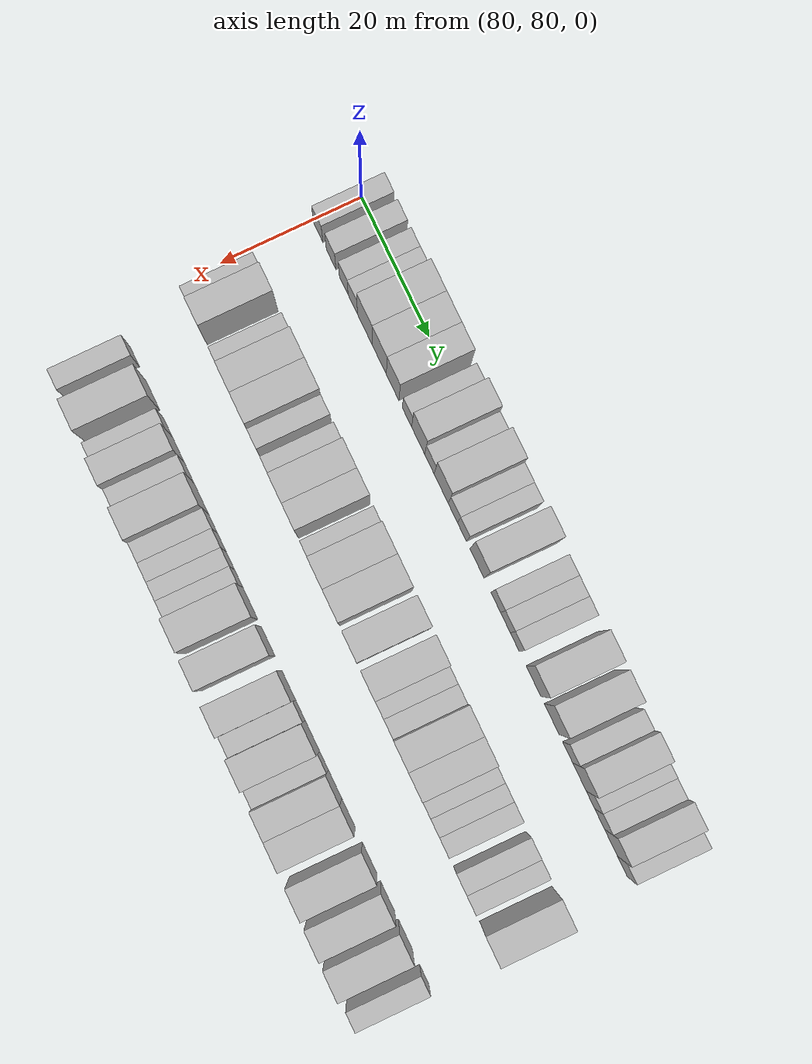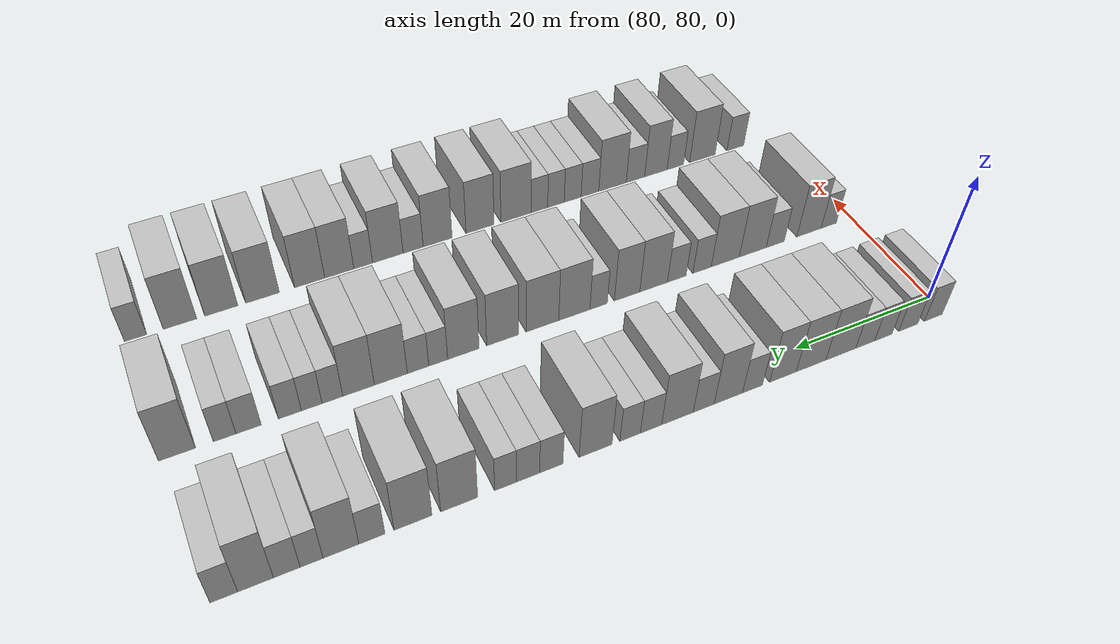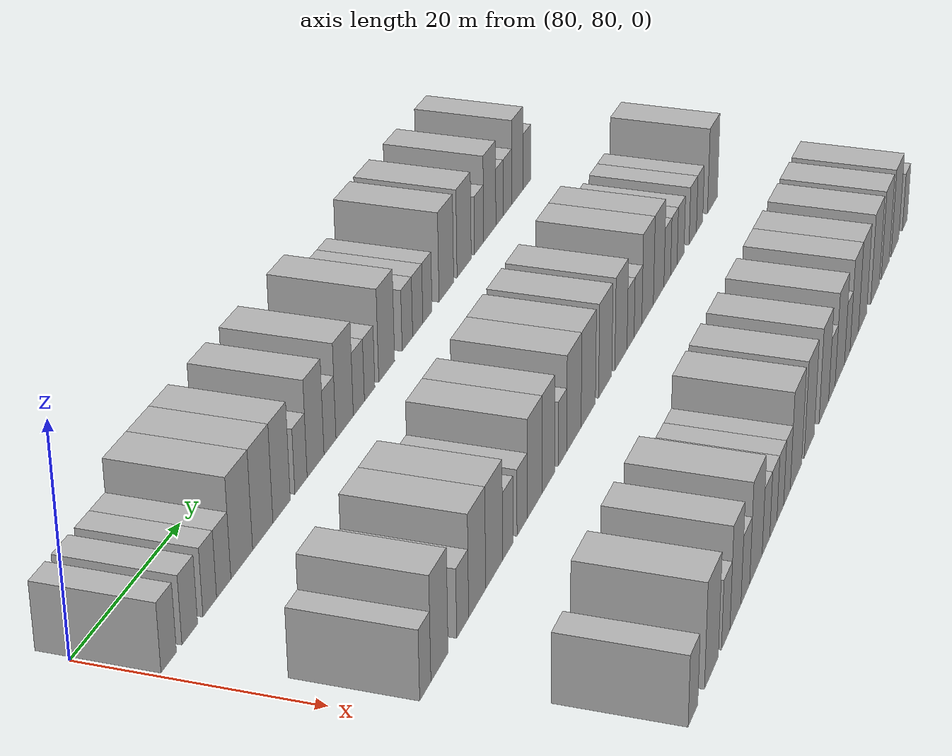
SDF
<sdf version="1.6">
 <world name="default">
  <model name="building_630">
   <static>1</static>
   <pose>82.0000 81.7824 0 0.000000 0.000000 0.000000</pose>
   <link name="link">
    <pose>0 0 3.00 0 0 0</pose>
    <collision name="collision"><geometry><box><size>10.0000 2.7802 6.0000</size></box></geometry></collision>
    <visual name="visual">
     <cast_shadows>0</cast_shadows>
     <geometry><box><size>10.0000 2.7802 6.0000</size></box></geometry>
     <material>
      <script>
       <uri>model://HANNAS_wall/materials/scripts</uri>
       <uri>model://HANNAS_wall/materials/textures</uri>
       <name>vrc/HANNAS_wall</name>
      </script>
     </material>
    </visual>
   </link>
  </model>
  <model name="building_631">
   <static>1</static>
   <pose>82.0000 85.6261 0 0.000000 0.000000 0.000000</pose>
   <link name="link">
    <pose>0 0 3.00 0 0 0</pose>
    <collision name="collision"><geometry><box><size>10.0000 2.9071 6.0000</size></box></geometry></collision>
    <visual name="visual">
     <cast_shadows>0</cast_shadows>
     <geometry><box><size>10.0000 2.9071 6.0000</size></box></geometry>
     <material>
      <script>
       <uri>model://HANNAS_wall/materials/scripts</uri>
       <uri>model://HANNAS_wall/materials/textures</uri>
       <name>vrc/HANNAS_wall</name>
      </script>
     </material>
    </visual>
   </link>
  </model>
  <model name="building_632">
   <static>1</static>
   <pose>82.0000 89.3894 0 0.000000 0.000000 0.000000</pose>
   <link name="link">
    <pose>0 0 3.00 0 0 0</pose>
    <collision name="collision"><geometry><box><size>10.0000 2.6193 6.0000</size></box></geometry></collision>
    <visual name="visual">
     <cast_shadows>0</cast_shadows>
     <geometry><box><size>10.0000 2.6193 6.0000</size></box></geometry>
     <material>
      <script>
       <uri>model://HANNAS_wall/materials/scripts</uri>
       <uri>model://HANNAS_wall/materials/textures</uri>
       <name>vrc/HANNAS_wall</name>
      </script>
     </material>
    </visual>
   </link>
  </model>
  <model name="building_633">
   <static>1</static>
   <pose>82.0000 92.0982 0 0.000000 0.000000 0.000000</pose>
   <link name="link">
    <pose>0 0 3.00 0 0 0</pose>
    <collision name="collision"><geometry><box><size>10.0000 2.7984 6.0000</size></box></geometry></collision>
    <visual name="visual">
     <cast_shadows>0</cast_shadows>
     <geometry><box><size>10.0000 2.7984 6.0000</size></box></geometry>
     <material>
      <script>
       <uri>model://HANNAS_wall/materials/scripts</uri>
       <uri>model://HANNAS_wall/materials/textures</uri>
       <name>vrc/HANNAS_wall</name>
      </script>
     </material>
    </visual>
   </link>
  </model>
  <model name="building_634">
   <static>1</static>
   <pose>82.0000 95.6857 0 0.000000 0.000000 0.000000</pose>
   <link name="link">
    <pose>0 0 4.50 0 0 0</pose>
    <collision name="collision"><geometry><box><size>10.0000 4.3767 9.0000</size></box></geometry></collision>
    <visual name="visual">
     <cast_shadows>0</cast_shadows>
     <geometry><box><size>10.0000 4.3767 9.0000</size></box></geometry>
     <material>
      <script>
       <uri>model://HANNAS_wall/materials/scripts</uri>
       <uri>model://HANNAS_wall/materials/textures</uri>
       <name>vrc/HANNAS_wall</name>
      </script>
     </material>
    </visual>
   </link>
  </model>
  <model name="building_635">
   <static>1</static>
   <pose>82.0000 99.9905 0 0.000000 0.000000 0.000000</pose>
   <link name="link">
    <pose>0 0 4.50 0 0 0</pose>
    <collision name="collision"><geometry><box><size>10.0000 4.2329 9.0000</size></box></geometry></collision>
    <visual name="visual">
     <cast_shadows>0</cast_shadows>
     <geometry><box><size>10.0000 4.2329 9.0000</size></box></geometry>
     <material>
      <script>
       <uri>model://HANNAS_wall/materials/scripts</uri>
       <uri>model://HANNAS_wall/materials/textures</uri>
       <name>vrc/HANNAS_wall</name>
      </script>
     </material>
    </visual>
   </link>
  </model>
  <model name="building_636">
   <static>1</static>
   <pose>82.0000 103.9727 0 0.000000 0.000000 0.000000</pose>
   <link name="link">
    <pose>0 0 4.50 0 0 0</pose>
    <collision name="collision"><geometry><box><size>10.0000 3.7315 9.0000</size></box></geometry></collision>
    <visual name="visual">
     <cast_shadows>0</cast_shadows>
     <geometry><box><size>10.0000 3.7315 9.0000</size></box></geometry>
     <material>
      <script>
       <uri>model://HANNAS_wall/materials/scripts</uri>
       <uri>model://HANNAS_wall/materials/textures</uri>
       <name>vrc/HANNAS_wall</name>
      </script>
     </material>
    </visual>
   </link>
  </model>
  <model name="building_637">
   <static>1</static>
   <pose>82.0000 108.2093 0 0.000000 0.000000 0.000000</pose>
   <link name="link">
    <pose>0 0 3.00 0 0 0</pose>
    <collision name="collision"><geometry><box><size>10.0000 2.7417 6.0000</size></box></geometry></collision>
    <visual name="visual">
     <cast_shadows>0</cast_shadows>
     <geometry><box><size>10.0000 2.7417 6.0000</size></box></geometry>
     <material>
      <script>
       <uri>model://HANNAS_wall/materials/scripts</uri>
       <uri>model://HANNAS_wall/materials/textures</uri>
       <name>vrc/HANNAS_wall</name>
      </script>
     </material>
    </visual>
   </link>
  </model>
  <model name="building_638">
   <static>1</static>
   <pose>82.0000 111.5057 0 0.000000 0.000000 0.000000</pose>
   <link name="link">
    <pose>0 0 4.50 0 0 0</pose>
    <collision name="collision"><geometry><box><size>10.0000 3.8511 9.0000</size></box></geometry></collision>
    <visual name="visual">
     <cast_shadows>0</cast_shadows>
     <geometry><box><size>10.0000 3.8511 9.0000</size></box></geometry>
     <material>
      <script>
       <uri>model://HANNAS_wall/materials/scripts</uri>
       <uri>model://HANNAS_wall/materials/textures</uri>
       <name>vrc/HANNAS_wall</name>
      </script>
     </material>
    </visual>
   </link>
  </model>
  <model name="building_639">
   <static>1</static>
   <pose>82.0000 114.8330 0 0.000000 0.000000 0.000000</pose>
   <link name="link">
    <pose>0 0 3.00 0 0 0</pose>
    <collision name="collision"><geometry><box><size>10.0000 2.8034 6.0000</size></box></geometry></collision>
    <visual name="visual">
     <cast_shadows>0</cast_shadows>
     <geometry><box><size>10.0000 2.8034 6.0000</size></box></geometry>
     <material>
      <script>
       <uri>model://HANNAS_wall/materials/scripts</uri>
       <uri>model://HANNAS_wall/materials/textures</uri>
       <name>vrc/HANNAS_wall</name>
      </script>
     </material>
    </visual>
   </link>
  </model>
  <model name="building_640">
   <static>1</static>
   <pose>82.0000 118.3128 0 0.000000 0.000000 0.000000</pose>
   <link name="link">
    <pose>0 0 4.50 0 0 0</pose>
    <collision name="collision"><geometry><box><size>10.0000 4.1563 9.0000</size></box></geometry></collision>
    <visual name="visual">
     <cast_shadows>0</cast_shadows>
     <geometry><box><size>10.0000 4.1563 9.0000</size></box></geometry>
     <material>
      <script>
       <uri>model://HANNAS_wall/materials/scripts</uri>
       <uri>model://HANNAS_wall/materials/textures</uri>
       <name>vrc/HANNAS_wall</name>
      </script>
     </material>
    </visual>
   </link>
  </model>
  <model name="building_641">
   <static>1</static>
   <pose>82.0000 121.7629 0 0.000000 0.000000 0.000000</pose>
   <link name="link">
    <pose>0 0 3.00 0 0 0</pose>
    <collision name="collision"><geometry><box><size>10.0000 2.7438 6.0000</size></box></geometry></collision>
    <visual name="visual">
     <cast_shadows>0</cast_shadows>
     <geometry><box><size>10.0000 2.7438 6.0000</size></box></geometry>
     <material>
      <script>
       <uri>model://HANNAS_wall/materials/scripts</uri>
       <uri>model://HANNAS_wall/materials/textures</uri>
       <name>vrc/HANNAS_wall</name>
      </script>
     </material>
    </visual>
   </link>
  </model>
  <model name="building_642">
   <static>1</static>
   <pose>82.0000 124.4463 0 0.000000 0.000000 0.000000</pose>
   <link name="link">
    <pose>0 0 3.00 0 0 0</pose>
    <collision name="collision"><geometry><box><size>10.0000 2.6231 6.0000</size></box></geometry></collision>
    <visual name="visual">
     <cast_shadows>0</cast_shadows>
     <geometry><box><size>10.0000 2.6231 6.0000</size></box></geometry>
     <material>
      <script>
       <uri>model://HANNAS_wall/materials/scripts</uri>
       <uri>model://HANNAS_wall/materials/textures</uri>
       <name>vrc/HANNAS_wall</name>
      </script>
     </material>
    </visual>
   </link>
  </model>
  <model name="building_643">
   <static>1</static>
   <pose>82.0000 128.8156 0 0.000000 0.000000 0.000000</pose>
   <link name="link">
    <pose>0 0 4.50 0 0 0</pose>
    <collision name="collision"><geometry><box><size>10.0000 4.1155 9.0000</size></box></geometry></collision>
    <visual name="visual">
     <cast_shadows>0</cast_shadows>
     <geometry><box><size>10.0000 4.1155 9.0000</size></box></geometry>
     <material>
      <script>
       <uri>model://HANNAS_wall/materials/scripts</uri>
       <uri>model://HANNAS_wall/materials/textures</uri>
       <name>vrc/HANNAS_wall</name>
      </script>
     </material>
    </visual>
   </link>
  </model>
  <model name="building_644">
   <static>1</static>
   <pose>82.0000 134.2905 0 0.000000 0.000000 0.000000</pose>
   <link name="link">
    <pose>0 0 3.00 0 0 0</pose>
    <collision name="collision"><geometry><box><size>10.0000 2.8343 6.0000</size></box></geometry></collision>
    <visual name="visual">
     <cast_shadows>0</cast_shadows>
     <geometry><box><size>10.0000 2.8343 6.0000</size></box></geometry>
     <material>
      <script>
       <uri>model://HANNAS_wall/materials/scripts</uri>
       <uri>model://HANNAS_wall/materials/textures</uri>
       <name>vrc/HANNAS_wall</name>
      </script>
     </material>
    </visual>
   </link>
  </model>
  <model name="building_645">
   <static>1</static>
   <pose>82.0000 137.1120 0 0.000000 0.000000 0.000000</pose>
   <link name="link">
    <pose>0 0 3.00 0 0 0</pose>
    <collision name="collision"><geometry><box><size>10.0000 2.8088 6.0000</size></box></geometry></collision>
    <visual name="visual">
     <cast_shadows>0</cast_shadows>
     <geometry><box><size>10.0000 2.8088 6.0000</size></box></geometry>
     <material>
      <script>
       <uri>model://HANNAS_wall/materials/scripts</uri>
       <uri>model://HANNAS_wall/materials/textures</uri>
       <name>vrc/HANNAS_wall</name>
      </script>
     </material>
    </visual>
   </link>
  </model>
  <model name="building_646">
   <static>1</static>
   <pose>82.0000 139.7992 0 0.000000 0.000000 0.000000</pose>
   <link name="link">
    <pose>0 0 3.00 0 0 0</pose>
    <collision name="collision"><geometry><box><size>10.0000 2.5657 6.0000</size></box></geometry></collision>
    <visual name="visual">
     <cast_shadows>0</cast_shadows>
     <geometry><box><size>10.0000 2.5657 6.0000</size></box></geometry>
     <material>
      <script>
       <uri>model://HANNAS_wall/materials/scripts</uri>
       <uri>model://HANNAS_wall/materials/textures</uri>
       <name>vrc/HANNAS_wall</name>
      </script>
     </material>
    </visual>
   </link>
  </model>
  <model name="building_647">
   <static>1</static>
   <pose>82.0000 145.2145 0 0.000000 0.000000 0.000000</pose>
   <link name="link">
    <pose>0 0 4.50 0 0 0</pose>
    <collision name="collision"><geometry><box><size>10.0000 4.2648 9.0000</size></box></geometry></collision>
    <visual name="visual">
     <cast_shadows>0</cast_shadows>
     <geometry><box><size>10.0000 4.2648 9.0000</size></box></geometry>
     <material>
      <script>
       <uri>model://HANNAS_wall/materials/scripts</uri>
       <uri>model://HANNAS_wall/materials/textures</uri>
       <name>vrc/HANNAS_wall</name>
      </script>
     </material>
    </visual>
   </link>
  </model>
  <model name="building_648">
   <static>1</static>
   <pose>82.0000 150.4827 0 0.000000 0.000000 0.000000</pose>
   <link name="link">
    <pose>0 0 4.50 0 0 0</pose>
    <collision name="collision"><geometry><box><size>10.0000 4.2716 9.0000</size></box></geometry></collision>
    <visual name="visual">
     <cast_shadows>0</cast_shadows>
     <geometry><box><size>10.0000 4.2716 9.0000</size></box></geometry>
     <material>
      <script>
       <uri>model://HANNAS_wall/materials/scripts</uri>
       <uri>model://HANNAS_wall/materials/textures</uri>
       <name>vrc/HANNAS_wall</name>
      </script>
     </material>
    </visual>
   </link>
  </model>
  <model name="building_649">
   <static>1</static>
   <pose>82.0000 155.0553 0 0.000000 0.000000 0.000000</pose>
   <link name="link">
    <pose>0 0 3.00 0 0 0</pose>
    <collision name="collision"><geometry><box><size>10.0000 2.8738 6.0000</size></box></geometry></collision>
    <visual name="visual">
     <cast_shadows>0</cast_shadows>
     <geometry><box><size>10.0000 2.8738 6.0000</size></box></geometry>
     <material>
      <script>
       <uri>model://HANNAS_wall/materials/scripts</uri>
       <uri>model://HANNAS_wall/materials/textures</uri>
       <name>vrc/HANNAS_wall</name>
      </script>
     </material>
    </visual>
   </link>
  </model>
  <model name="building_650">
   <static>1</static>
   <pose>82.0000 158.4322 0 0.000000 0.000000 0.000000</pose>
   <link name="link">
    <pose>0 0 4.50 0 0 0</pose>
    <collision name="collision"><geometry><box><size>10.0000 3.8799 9.0000</size></box></geometry></collision>
    <visual name="visual">
     <cast_shadows>0</cast_shadows>
     <geometry><box><size>10.0000 3.8799 9.0000</size></box></geometry>
     <material>
      <script>
       <uri>model://HANNAS_wall/materials/scripts</uri>
       <uri>model://HANNAS_wall/materials/textures</uri>
       <name>vrc/HANNAS_wall</name>
      </script>
     </material>
    </visual>
   </link>
  </model>
  <model name="building_651">
   <static>1</static>
   <pose>82.0000 161.5852 0 0.000000 0.000000 0.000000</pose>
   <link name="link">
    <pose>0 0 3.00 0 0 0</pose>
    <collision name="collision"><geometry><box><size>10.0000 2.4261 6.0000</size></box></geometry></collision>
    <visual name="visual">
     <cast_shadows>0</cast_shadows>
     <geometry><box><size>10.0000 2.4261 6.0000</size></box></geometry>
     <material>
      <script>
       <uri>model://HANNAS_wall/materials/scripts</uri>
       <uri>model://HANNAS_wall/materials/textures</uri>
       <name>vrc/HANNAS_wall</name>
      </script>
     </material>
    </visual>
   </link>
  </model>
  <model name="building_652">
   <static>1</static>
   <pose>82.0000 164.1970 0 0.000000 0.000000 0.000000</pose>
   <link name="link">
    <pose>0 0 3.00 0 0 0</pose>
    <collision name="collision"><geometry><box><size>10.0000 2.7975 6.0000</size></box></geometry></collision>
    <visual name="visual">
     <cast_shadows>0</cast_shadows>
     <geometry><box><size>10.0000 2.7975 6.0000</size></box></geometry>
     <material>
      <script>
       <uri>model://HANNAS_wall/materials/scripts</uri>
       <uri>model://HANNAS_wall/materials/textures</uri>
       <name>vrc/HANNAS_wall</name>
      </script>
     </material>
    </visual>
   </link>
  </model>
  <model name="building_653">
   <static>1</static>
   <pose>82.0000 167.4390 0 0.000000 0.000000 0.000000</pose>
   <link name="link">
    <pose>0 0 4.50 0 0 0</pose>
    <collision name="collision"><geometry><box><size>10.0000 3.6865 9.0000</size></box></geometry></collision>
    <visual name="visual">
     <cast_shadows>0</cast_shadows>
     <geometry><box><size>10.0000 3.6865 9.0000</size></box></geometry>
     <material>
      <script>
       <uri>model://HANNAS_wall/materials/scripts</uri>
       <uri>model://HANNAS_wall/materials/textures</uri>
       <name>vrc/HANNAS_wall</name>
      </script>
     </material>
    </visual>
   </link>
  </model>
  <model name="building_654">
   <static>1</static>
   <pose>82.0000 170.6936 0 0.000000 0.000000 0.000000</pose>
   <link name="link">
    <pose>0 0 3.00 0 0 0</pose>
    <collision name="collision"><geometry><box><size>10.0000 2.8226 6.0000</size></box></geometry></collision>
    <visual name="visual">
     <cast_shadows>0</cast_shadows>
     <geometry><box><size>10.0000 2.8226 6.0000</size></box></geometry>
     <material>
      <script>
       <uri>model://HANNAS_wall/materials/scripts</uri>
       <uri>model://HANNAS_wall/materials/textures</uri>
       <name>vrc/HANNAS_wall</name>
      </script>
     </material>
    </visual>
   </link>
  </model>
  <model name="building_814">
   <static>1</static>
   <pose>101.0000 83.7305 0 0.000000 0.000000 0.000000</pose>
   <link name="link">
    <pose>0 0 3.00 0 0 0</pose>
    <collision name="collision"><geometry><box><size>10.0000 2.4700 6.0000</size></box></geometry></collision>
    <visual name="visual">
     <cast_shadows>0</cast_shadows>
     <geometry><box><size>10.0000 2.4700 6.0000</size></box></geometry>
     <material>
      <script>
       <uri>model://HANNAS_wall/materials/scripts</uri>
       <uri>model://HANNAS_wall/materials/textures</uri>
       <name>vrc/HANNAS_wall</name>
      </script>
     </material>
    </visual>
   </link>
  </model>
  <model name="building_815">
   <static>1</static>
   <pose>101.0000 86.9120 0 0.000000 0.000000 0.000000</pose>
   <link name="link">
    <pose>0 0 4.50 0 0 0</pose>
    <collision name="collision"><geometry><box><size>10.0000 3.8930 9.0000</size></box></geometry></collision>
    <visual name="visual">
     <cast_shadows>0</cast_shadows>
     <geometry><box><size>10.0000 3.8930 9.0000</size></box></geometry>
     <material>
      <script>
       <uri>model://HANNAS_wall/materials/scripts</uri>
       <uri>model://HANNAS_wall/materials/textures</uri>
       <name>vrc/HANNAS_wall</name>
      </script>
     </material>
    </visual>
   </link>
  </model>
  <model name="building_816">
   <static>1</static>
   <pose>101.0000 92.2746 0 0.000000 0.000000 0.000000</pose>
   <link name="link">
    <pose>0 0 3.00 0 0 0</pose>
    <collision name="collision"><geometry><box><size>10.0000 2.8321 6.0000</size></box></geometry></collision>
    <visual name="visual">
     <cast_shadows>0</cast_shadows>
     <geometry><box><size>10.0000 2.8321 6.0000</size></box></geometry>
     <material>
      <script>
       <uri>model://HANNAS_wall/materials/scripts</uri>
       <uri>model://HANNAS_wall/materials/textures</uri>
       <name>vrc/HANNAS_wall</name>
      </script>
     </material>
    </visual>
   </link>
  </model>
  <model name="building_817">
   <static>1</static>
   <pose>101.0000 95.7665 0 0.000000 0.000000 0.000000</pose>
   <link name="link">
    <pose>0 0 4.50 0 0 0</pose>
    <collision name="collision"><geometry><box><size>10.0000 4.1518 9.0000</size></box></geometry></collision>
    <visual name="visual">
     <cast_shadows>0</cast_shadows>
     <geometry><box><size>10.0000 4.1518 9.0000</size></box></geometry>
     <material>
      <script>
       <uri>model://HANNAS_wall/materials/scripts</uri>
       <uri>model://HANNAS_wall/materials/textures</uri>
       <name>vrc/HANNAS_wall</name>
      </script>
     </material>
    </visual>
   </link>
  </model>
  <model name="building_818">
   <static>1</static>
   <pose>101.0000 99.9763 0 0.000000 0.000000 0.000000</pose>
   <link name="link">
    <pose>0 0 4.50 0 0 0</pose>
    <collision name="collision"><geometry><box><size>10.0000 4.2677 9.0000</size></box></geometry></collision>
    <visual name="visual">
     <cast_shadows>0</cast_shadows>
     <geometry><box><size>10.0000 4.2677 9.0000</size></box></geometry>
     <material>
      <script>
       <uri>model://HANNAS_wall/materials/scripts</uri>
       <uri>model://HANNAS_wall/materials/textures</uri>
       <name>vrc/HANNAS_wall</name>
      </script>
     </material>
    </visual>
   </link>
  </model>
  <model name="building_819">
   <static>1</static>
   <pose>101.0000 103.4939 0 0.000000 0.000000 0.000000</pose>
   <link name="link">
    <pose>0 0 3.00 0 0 0</pose>
    <collision name="collision"><geometry><box><size>10.0000 2.7676 6.0000</size></box></geometry></collision>
    <visual name="visual">
     <cast_shadows>0</cast_shadows>
     <geometry><box><size>10.0000 2.7676 6.0000</size></box></geometry>
     <material>
      <script>
       <uri>model://HANNAS_wall/materials/scripts</uri>
       <uri>model://HANNAS_wall/materials/textures</uri>
       <name>vrc/HANNAS_wall</name>
      </script>
     </material>
    </visual>
   </link>
  </model>
  <model name="building_820">
   <static>1</static>
   <pose>101.0000 107.2509 0 0.000000 0.000000 0.000000</pose>
   <link name="link">
    <pose>0 0 3.00 0 0 0</pose>
    <collision name="collision"><geometry><box><size>10.0000 2.7465 6.0000</size></box></geometry></collision>
    <visual name="visual">
     <cast_shadows>0</cast_shadows>
     <geometry><box><size>10.0000 2.7465 6.0000</size></box></geometry>
     <material>
      <script>
       <uri>model://HANNAS_wall/materials/scripts</uri>
       <uri>model://HANNAS_wall/materials/textures</uri>
       <name>vrc/HANNAS_wall</name>
      </script>
     </material>
    </visual>
   </link>
  </model>
  <model name="building_821">
   <static>1</static>
   <pose>101.0000 110.6483 0 0.000000 0.000000 0.000000</pose>
   <link name="link">
    <pose>0 0 4.50 0 0 0</pose>
    <collision name="collision"><geometry><box><size>10.0000 4.0482 9.0000</size></box></geometry></collision>
    <visual name="visual">
     <cast_shadows>0</cast_shadows>
     <geometry><box><size>10.0000 4.0482 9.0000</size></box></geometry>
     <material>
      <script>
       <uri>model://HANNAS_wall/materials/scripts</uri>
       <uri>model://HANNAS_wall/materials/textures</uri>
       <name>vrc/HANNAS_wall</name>
      </script>
     </material>
    </visual>
   </link>
  </model>
  <model name="building_822">
   <static>1</static>
   <pose>101.0000 114.4860 0 0.000000 0.000000 0.000000</pose>
   <link name="link">
    <pose>0 0 4.50 0 0 0</pose>
    <collision name="collision"><geometry><box><size>10.0000 3.6273 9.0000</size></box></geometry></collision>
    <visual name="visual">
     <cast_shadows>0</cast_shadows>
     <geometry><box><size>10.0000 3.6273 9.0000</size></box></geometry>
     <material>
      <script>
       <uri>model://HANNAS_wall/materials/scripts</uri>
       <uri>model://HANNAS_wall/materials/textures</uri>
       <name>vrc/HANNAS_wall</name>
      </script>
     </material>
    </visual>
   </link>
  </model>
  <model name="building_823">
   <static>1</static>
   <pose>101.0000 118.5266 0 0.000000 0.000000 0.000000</pose>
   <link name="link">
    <pose>0 0 3.00 0 0 0</pose>
    <collision name="collision"><geometry><box><size>10.0000 2.4540 6.0000</size></box></geometry></collision>
    <visual name="visual">
     <cast_shadows>0</cast_shadows>
     <geometry><box><size>10.0000 2.4540 6.0000</size></box></geometry>
     <material>
      <script>
       <uri>model://HANNAS_wall/materials/scripts</uri>
       <uri>model://HANNAS_wall/materials/textures</uri>
       <name>vrc/HANNAS_wall</name>
      </script>
     </material>
    </visual>
   </link>
  </model>
  <model name="building_824">
   <static>1</static>
   <pose>101.0000 121.9169 0 0.000000 0.000000 0.000000</pose>
   <link name="link">
    <pose>0 0 4.50 0 0 0</pose>
    <collision name="collision"><geometry><box><size>10.0000 4.3265 9.0000</size></box></geometry></collision>
    <visual name="visual">
     <cast_shadows>0</cast_shadows>
     <geometry><box><size>10.0000 4.3265 9.0000</size></box></geometry>
     <material>
      <script>
       <uri>model://HANNAS_wall/materials/scripts</uri>
       <uri>model://HANNAS_wall/materials/textures</uri>
       <name>vrc/HANNAS_wall</name>
      </script>
     </material>
    </visual>
   </link>
  </model>
  <model name="building_825">
   <static>1</static>
   <pose>101.0000 126.3007 0 0.000000 0.000000 0.000000</pose>
   <link name="link">
    <pose>0 0 4.50 0 0 0</pose>
    <collision name="collision"><geometry><box><size>10.0000 4.4410 9.0000</size></box></geometry></collision>
    <visual name="visual">
     <cast_shadows>0</cast_shadows>
     <geometry><box><size>10.0000 4.4410 9.0000</size></box></geometry>
     <material>
      <script>
       <uri>model://HANNAS_wall/materials/scripts</uri>
       <uri>model://HANNAS_wall/materials/textures</uri>
       <name>vrc/HANNAS_wall</name>
      </script>
     </material>
    </visual>
   </link>
  </model>
  <model name="building_826">
   <static>1</static>
   <pose>101.0000 131.6463 0 0.000000 0.000000 0.000000</pose>
   <link name="link">
    <pose>0 0 4.50 0 0 0</pose>
    <collision name="collision"><geometry><box><size>10.0000 4.2501 9.0000</size></box></geometry></collision>
    <visual name="visual">
     <cast_shadows>0</cast_shadows>
     <geometry><box><size>10.0000 4.2501 9.0000</size></box></geometry>
     <material>
      <script>
       <uri>model://HANNAS_wall/materials/scripts</uri>
       <uri>model://HANNAS_wall/materials/textures</uri>
       <name>vrc/HANNAS_wall</name>
      </script>
     </material>
    </visual>
   </link>
  </model>
  <model name="building_827">
   <static>1</static>
   <pose>101.0000 136.8098 0 0.000000 0.000000 0.000000</pose>
   <link name="link">
    <pose>0 0 4.50 0 0 0</pose>
    <collision name="collision"><geometry><box><size>10.0000 4.0769 9.0000</size></box></geometry></collision>
    <visual name="visual">
     <cast_shadows>0</cast_shadows>
     <geometry><box><size>10.0000 4.0769 9.0000</size></box></geometry>
     <material>
      <script>
       <uri>model://HANNAS_wall/materials/scripts</uri>
       <uri>model://HANNAS_wall/materials/textures</uri>
       <name>vrc/HANNAS_wall</name>
      </script>
     </material>
    </visual>
   </link>
  </model>
  <model name="building_828">
   <static>1</static>
   <pose>101.0000 140.0622 0 0.000000 0.000000 0.000000</pose>
   <link name="link">
    <pose>0 0 3.00 0 0 0</pose>
    <collision name="collision"><geometry><box><size>10.0000 2.4278 6.0000</size></box></geometry></collision>
    <visual name="visual">
     <cast_shadows>0</cast_shadows>
     <geometry><box><size>10.0000 2.4278 6.0000</size></box></geometry>
     <material>
      <script>
       <uri>model://HANNAS_wall/materials/scripts</uri>
       <uri>model://HANNAS_wall/materials/textures</uri>
       <name>vrc/HANNAS_wall</name>
      </script>
     </material>
    </visual>
   </link>
  </model>
  <model name="building_829">
   <static>1</static>
   <pose>101.0000 142.6255 0 0.000000 0.000000 0.000000</pose>
   <link name="link">
    <pose>0 0 3.00 0 0 0</pose>
    <collision name="collision"><geometry><box><size>10.0000 2.6987 6.0000</size></box></geometry></collision>
    <visual name="visual">
     <cast_shadows>0</cast_shadows>
     <geometry><box><size>10.0000 2.6987 6.0000</size></box></geometry>
     <material>
      <script>
       <uri>model://HANNAS_wall/materials/scripts</uri>
       <uri>model://HANNAS_wall/materials/textures</uri>
       <name>vrc/HANNAS_wall</name>
      </script>
     </material>
    </visual>
   </link>
  </model>
  <model name="building_830">
   <static>1</static>
   <pose>101.0000 146.0356 0 0.000000 0.000000 0.000000</pose>
   <link name="link">
    <pose>0 0 4.50 0 0 0</pose>
    <collision name="collision"><geometry><box><size>10.0000 4.1215 9.0000</size></box></geometry></collision>
    <visual name="visual">
     <cast_shadows>0</cast_shadows>
     <geometry><box><size>10.0000 4.1215 9.0000</size></box></geometry>
     <material>
      <script>
       <uri>model://HANNAS_wall/materials/scripts</uri>
       <uri>model://HANNAS_wall/materials/textures</uri>
       <name>vrc/HANNAS_wall</name>
      </script>
     </material>
    </visual>
   </link>
  </model>
  <model name="building_831">
   <static>1</static>
   <pose>101.0000 150.0343 0 0.000000 0.000000 0.000000</pose>
   <link name="link">
    <pose>0 0 4.50 0 0 0</pose>
    <collision name="collision"><geometry><box><size>10.0000 3.8760 9.0000</size></box></geometry></collision>
    <visual name="visual">
     <cast_shadows>0</cast_shadows>
     <geometry><box><size>10.0000 3.8760 9.0000</size></box></geometry>
     <material>
      <script>
       <uri>model://HANNAS_wall/materials/scripts</uri>
       <uri>model://HANNAS_wall/materials/textures</uri>
       <name>vrc/HANNAS_wall</name>
      </script>
     </material>
    </visual>
   </link>
  </model>
  <model name="building_832">
   <static>1</static>
   <pose>101.0000 153.2175 0 0.000000 0.000000 0.000000</pose>
   <link name="link">
    <pose>0 0 3.00 0 0 0</pose>
    <collision name="collision"><geometry><box><size>10.0000 2.4904 6.0000</size></box></geometry></collision>
    <visual name="visual">
     <cast_shadows>0</cast_shadows>
     <geometry><box><size>10.0000 2.4904 6.0000</size></box></geometry>
     <material>
      <script>
       <uri>model://HANNAS_wall/materials/scripts</uri>
       <uri>model://HANNAS_wall/materials/textures</uri>
       <name>vrc/HANNAS_wall</name>
      </script>
     </material>
    </visual>
   </link>
  </model>
  <model name="building_833">
   <static>1</static>
   <pose>101.0000 155.7009 0 0.000000 0.000000 0.000000</pose>
   <link name="link">
    <pose>0 0 3.00 0 0 0</pose>
    <collision name="collision"><geometry><box><size>10.0000 2.4764 6.0000</size></box></geometry></collision>
    <visual name="visual">
     <cast_shadows>0</cast_shadows>
     <geometry><box><size>10.0000 2.4764 6.0000</size></box></geometry>
     <material>
      <script>
       <uri>model://HANNAS_wall/materials/scripts</uri>
       <uri>model://HANNAS_wall/materials/textures</uri>
       <name>vrc/HANNAS_wall</name>
      </script>
     </material>
    </visual>
   </link>
  </model>
  <model name="building_834">
   <static>1</static>
   <pose>101.0000 158.2944 0 0.000000 0.000000 0.000000</pose>
   <link name="link">
    <pose>0 0 3.00 0 0 0</pose>
    <collision name="collision"><geometry><box><size>10.0000 2.7106 6.0000</size></box></geometry></collision>
    <visual name="visual">
     <cast_shadows>0</cast_shadows>
     <geometry><box><size>10.0000 2.7106 6.0000</size></box></geometry>
     <material>
      <script>
       <uri>model://HANNAS_wall/materials/scripts</uri>
       <uri>model://HANNAS_wall/materials/textures</uri>
       <name>vrc/HANNAS_wall</name>
      </script>
     </material>
    </visual>
   </link>
  </model>
  <model name="building_835">
   <static>1</static>
   <pose>101.0000 163.1065 0 0.000000 0.000000 0.000000</pose>
   <link name="link">
    <pose>0 0 3.00 0 0 0</pose>
    <collision name="collision"><geometry><box><size>10.0000 2.9137 6.0000</size></box></geometry></collision>
    <visual name="visual">
     <cast_shadows>0</cast_shadows>
     <geometry><box><size>10.0000 2.9137 6.0000</size></box></geometry>
     <material>
      <script>
       <uri>model://HANNAS_wall/materials/scripts</uri>
       <uri>model://HANNAS_wall/materials/textures</uri>
       <name>vrc/HANNAS_wall</name>
      </script>
     </material>
    </visual>
   </link>
  </model>
  <model name="building_836">
   <static>1</static>
   <pose>101.0000 165.8531 0 0.000000 0.000000 0.000000</pose>
   <link name="link">
    <pose>0 0 3.00 0 0 0</pose>
    <collision name="collision"><geometry><box><size>10.0000 2.5796 6.0000</size></box></geometry></collision>
    <visual name="visual">
     <cast_shadows>0</cast_shadows>
     <geometry><box><size>10.0000 2.5796 6.0000</size></box></geometry>
     <material>
      <script>
       <uri>model://HANNAS_wall/materials/scripts</uri>
       <uri>model://HANNAS_wall/materials/textures</uri>
       <name>vrc/HANNAS_wall</name>
      </script>
     </material>
    </visual>
   </link>
  </model>
  <model name="building_837">
   <static>1</static>
   <pose>101.0000 171.2028 0 0.000000 0.000000 0.000000</pose>
   <link name="link">
    <pose>0 0 4.50 0 0 0</pose>
    <collision name="collision"><geometry><box><size>10.0000 4.1198 9.0000</size></box></geometry></collision>
    <visual name="visual">
     <cast_shadows>0</cast_shadows>
     <geometry><box><size>10.0000 4.1198 9.0000</size></box></geometry>
     <material>
      <script>
       <uri>model://HANNAS_wall/materials/scripts</uri>
       <uri>model://HANNAS_wall/materials/textures</uri>
       <name>vrc/HANNAS_wall</name>
      </script>
     </material>
    </visual>
   </link>
  </model>
  <model name="building_992">
   <static>1</static>
   <pose>120.0000 86.3551 0 0.000000 0.000000 0.000000</pose>
   <link name="link">
    <pose>0 0 3.00 0 0 0</pose>
    <collision name="collision"><geometry><box><size>10.0000 2.8340 6.0000</size></box></geometry></collision>
    <visual name="visual">
     <cast_shadows>0</cast_shadows>
     <geometry><box><size>10.0000 2.8340 6.0000</size></box></geometry>
     <material>
      <script>
       <uri>model://HANNAS_wall/materials/scripts</uri>
       <uri>model://HANNAS_wall/materials/textures</uri>
       <name>vrc/HANNAS_wall</name>
      </script>
     </material>
    </visual>
   </link>
  </model>
  <model name="building_993">
   <static>1</static>
   <pose>120.0000 91.8932 0 0.000000 0.000000 0.000000</pose>
   <link name="link">
    <pose>0 0 4.50 0 0 0</pose>
    <collision name="collision"><geometry><box><size>10.0000 4.2423 9.0000</size></box></geometry></collision>
    <visual name="visual">
     <cast_shadows>0</cast_shadows>
     <geometry><box><size>10.0000 4.2423 9.0000</size></box></geometry>
     <material>
      <script>
       <uri>model://HANNAS_wall/materials/scripts</uri>
       <uri>model://HANNAS_wall/materials/textures</uri>
       <name>vrc/HANNAS_wall</name>
      </script>
     </material>
    </visual>
   </link>
  </model>
  <model name="building_994">
   <static>1</static>
   <pose>120.0000 96.3564 0 0.000000 0.000000 0.000000</pose>
   <link name="link">
    <pose>0 0 3.00 0 0 0</pose>
    <collision name="collision"><geometry><box><size>10.0000 2.6840 6.0000</size></box></geometry></collision>
    <visual name="visual">
     <cast_shadows>0</cast_shadows>
     <geometry><box><size>10.0000 2.6840 6.0000</size></box></geometry>
     <material>
      <script>
       <uri>model://HANNAS_wall/materials/scripts</uri>
       <uri>model://HANNAS_wall/materials/textures</uri>
       <name>vrc/HANNAS_wall</name>
      </script>
     </material>
    </visual>
   </link>
  </model>
  <model name="building_995">
   <static>1</static>
   <pose>120.0000 99.5133 0 0.000000 0.000000 0.000000</pose>
   <link name="link">
    <pose>0 0 4.50 0 0 0</pose>
    <collision name="collision"><geometry><box><size>10.0000 3.6299 9.0000</size></box></geometry></collision>
    <visual name="visual">
     <cast_shadows>0</cast_shadows>
     <geometry><box><size>10.0000 3.6299 9.0000</size></box></geometry>
     <material>
      <script>
       <uri>model://HANNAS_wall/materials/scripts</uri>
       <uri>model://HANNAS_wall/materials/textures</uri>
       <name>vrc/HANNAS_wall</name>
      </script>
     </material>
    </visual>
   </link>
  </model>
  <model name="building_996">
   <static>1</static>
   <pose>120.0000 102.7921 0 0.000000 0.000000 0.000000</pose>
   <link name="link">
    <pose>0 0 3.00 0 0 0</pose>
    <collision name="collision"><geometry><box><size>10.0000 2.9277 6.0000</size></box></geometry></collision>
    <visual name="visual">
     <cast_shadows>0</cast_shadows>
     <geometry><box><size>10.0000 2.9277 6.0000</size></box></geometry>
     <material>
      <script>
       <uri>model://HANNAS_wall/materials/scripts</uri>
       <uri>model://HANNAS_wall/materials/textures</uri>
       <name>vrc/HANNAS_wall</name>
      </script>
     </material>
    </visual>
   </link>
  </model>
  <model name="building_997">
   <static>1</static>
   <pose>120.0000 106.4235 0 0.000000 0.000000 0.000000</pose>
   <link name="link">
    <pose>0 0 4.50 0 0 0</pose>
    <collision name="collision"><geometry><box><size>10.0000 4.3353 9.0000</size></box></geometry></collision>
    <visual name="visual">
     <cast_shadows>0</cast_shadows>
     <geometry><box><size>10.0000 4.3353 9.0000</size></box></geometry>
     <material>
      <script>
       <uri>model://HANNAS_wall/materials/scripts</uri>
       <uri>model://HANNAS_wall/materials/textures</uri>
       <name>vrc/HANNAS_wall</name>
      </script>
     </material>
    </visual>
   </link>
  </model>
  <model name="building_998">
   <static>1</static>
   <pose>120.0000 109.9596 0 0.000000 0.000000 0.000000</pose>
   <link name="link">
    <pose>0 0 3.00 0 0 0</pose>
    <collision name="collision"><geometry><box><size>10.0000 2.7368 6.0000</size></box></geometry></collision>
    <visual name="visual">
     <cast_shadows>0</cast_shadows>
     <geometry><box><size>10.0000 2.7368 6.0000</size></box></geometry>
     <material>
      <script>
       <uri>model://HANNAS_wall/materials/scripts</uri>
       <uri>model://HANNAS_wall/materials/textures</uri>
       <name>vrc/HANNAS_wall</name>
      </script>
     </material>
    </visual>
   </link>
  </model>
  <model name="building_999">
   <static>1</static>
   <pose>120.0000 112.6298 0 0.000000 0.000000 0.000000</pose>
   <link name="link">
    <pose>0 0 3.00 0 0 0</pose>
    <collision name="collision"><geometry><box><size>10.0000 2.6037 6.0000</size></box></geometry></collision>
    <visual name="visual">
     <cast_shadows>0</cast_shadows>
     <geometry><box><size>10.0000 2.6037 6.0000</size></box></geometry>
     <material>
      <script>
       <uri>model://HANNAS_wall/materials/scripts</uri>
       <uri>model://HANNAS_wall/materials/textures</uri>
       <name>vrc/HANNAS_wall</name>
      </script>
     </material>
    </visual>
   </link>
  </model>
  <model name="building_1000">
   <static>1</static>
   <pose>120.0000 115.1921 0 0.000000 0.000000 0.000000</pose>
   <link name="link">
    <pose>0 0 3.00 0 0 0</pose>
    <collision name="collision"><geometry><box><size>10.0000 2.5209 6.0000</size></box></geometry></collision>
    <visual name="visual">
     <cast_shadows>0</cast_shadows>
     <geometry><box><size>10.0000 2.5209 6.0000</size></box></geometry>
     <material>
      <script>
       <uri>model://HANNAS_wall/materials/scripts</uri>
       <uri>model://HANNAS_wall/materials/textures</uri>
       <name>vrc/HANNAS_wall</name>
      </script>
     </material>
    </visual>
   </link>
  </model>
  <model name="building_1001">
   <static>1</static>
   <pose>120.0000 117.6975 0 0.000000 0.000000 0.000000</pose>
   <link name="link">
    <pose>0 0 3.00 0 0 0</pose>
    <collision name="collision"><geometry><box><size>10.0000 2.4899 6.0000</size></box></geometry></collision>
    <visual name="visual">
     <cast_shadows>0</cast_shadows>
     <geometry><box><size>10.0000 2.4899 6.0000</size></box></geometry>
     <material>
      <script>
       <uri>model://HANNAS_wall/materials/scripts</uri>
       <uri>model://HANNAS_wall/materials/textures</uri>
       <name>vrc/HANNAS_wall</name>
      </script>
     </material>
    </visual>
   </link>
  </model>
  <model name="building_1002">
   <static>1</static>
   <pose>120.0000 121.1845 0 0.000000 0.000000 0.000000</pose>
   <link name="link">
    <pose>0 0 4.50 0 0 0</pose>
    <collision name="collision"><geometry><box><size>10.0000 4.4840 9.0000</size></box></geometry></collision>
    <visual name="visual">
     <cast_shadows>0</cast_shadows>
     <geometry><box><size>10.0000 4.4840 9.0000</size></box></geometry>
     <material>
      <script>
       <uri>model://HANNAS_wall/materials/scripts</uri>
       <uri>model://HANNAS_wall/materials/textures</uri>
       <name>vrc/HANNAS_wall</name>
      </script>
     </material>
    </visual>
   </link>
  </model>
  <model name="building_1003">
   <static>1</static>
   <pose>120.0000 126.4718 0 0.000000 0.000000 0.000000</pose>
   <link name="link">
    <pose>0 0 4.50 0 0 0</pose>
    <collision name="collision"><geometry><box><size>10.0000 4.0906 9.0000</size></box></geometry></collision>
    <visual name="visual">
     <cast_shadows>0</cast_shadows>
     <geometry><box><size>10.0000 4.0906 9.0000</size></box></geometry>
     <material>
      <script>
       <uri>model://HANNAS_wall/materials/scripts</uri>
       <uri>model://HANNAS_wall/materials/textures</uri>
       <name>vrc/HANNAS_wall</name>
      </script>
     </material>
    </visual>
   </link>
  </model>
  <model name="building_1004">
   <static>1</static>
   <pose>120.0000 132.5642 0 0.000000 0.000000 0.000000</pose>
   <link name="link">
    <pose>0 0 4.50 0 0 0</pose>
    <collision name="collision"><geometry><box><size>10.0000 4.0941 9.0000</size></box></geometry></collision>
    <visual name="visual">
     <cast_shadows>0</cast_shadows>
     <geometry><box><size>10.0000 4.0941 9.0000</size></box></geometry>
     <material>
      <script>
       <uri>model://HANNAS_wall/materials/scripts</uri>
       <uri>model://HANNAS_wall/materials/textures</uri>
       <name>vrc/HANNAS_wall</name>
      </script>
     </material>
    </visual>
   </link>
  </model>
  <model name="building_1005">
   <static>1</static>
   <pose>120.0000 136.0176 0 0.000000 0.000000 0.000000</pose>
   <link name="link">
    <pose>0 0 3.00 0 0 0</pose>
    <collision name="collision"><geometry><box><size>10.0000 2.8128 6.0000</size></box></geometry></collision>
    <visual name="visual">
     <cast_shadows>0</cast_shadows>
     <geometry><box><size>10.0000 2.8128 6.0000</size></box></geometry>
     <material>
      <script>
       <uri>model://HANNAS_wall/materials/scripts</uri>
       <uri>model://HANNAS_wall/materials/textures</uri>
       <name>vrc/HANNAS_wall</name>
      </script>
     </material>
    </visual>
   </link>
  </model>
  <model name="building_1006">
   <static>1</static>
   <pose>120.0000 139.5359 0 0.000000 0.000000 0.000000</pose>
   <link name="link">
    <pose>0 0 4.50 0 0 0</pose>
    <collision name="collision"><geometry><box><size>10.0000 4.2237 9.0000</size></box></geometry></collision>
    <visual name="visual">
     <cast_shadows>0</cast_shadows>
     <geometry><box><size>10.0000 4.2237 9.0000</size></box></geometry>
     <material>
      <script>
       <uri>model://HANNAS_wall/materials/scripts</uri>
       <uri>model://HANNAS_wall/materials/textures</uri>
       <name>vrc/HANNAS_wall</name>
      </script>
     </material>
    </visual>
   </link>
  </model>
  <model name="building_1007">
   <static>1</static>
   <pose>120.0000 142.9234 0 0.000000 0.000000 0.000000</pose>
   <link name="link">
    <pose>0 0 3.00 0 0 0</pose>
    <collision name="collision"><geometry><box><size>10.0000 2.5513 6.0000</size></box></geometry></collision>
    <visual name="visual">
     <cast_shadows>0</cast_shadows>
     <geometry><box><size>10.0000 2.5513 6.0000</size></box></geometry>
     <material>
      <script>
       <uri>model://HANNAS_wall/materials/scripts</uri>
       <uri>model://HANNAS_wall/materials/textures</uri>
       <name>vrc/HANNAS_wall</name>
      </script>
     </material>
    </visual>
   </link>
  </model>
  <model name="building_1008">
   <static>1</static>
   <pose>120.0000 146.1531 0 0.000000 0.000000 0.000000</pose>
   <link name="link">
    <pose>0 0 4.50 0 0 0</pose>
    <collision name="collision"><geometry><box><size>10.0000 3.9081 9.0000</size></box></geometry></collision>
    <visual name="visual">
     <cast_shadows>0</cast_shadows>
     <geometry><box><size>10.0000 3.9081 9.0000</size></box></geometry>
     <material>
      <script>
       <uri>model://HANNAS_wall/materials/scripts</uri>
       <uri>model://HANNAS_wall/materials/textures</uri>
       <name>vrc/HANNAS_wall</name>
      </script>
     </material>
    </visual>
   </link>
  </model>
  <model name="building_1009">
   <static>1</static>
   <pose>120.0000 150.1011 0 0.000000 0.000000 0.000000</pose>
   <link name="link">
    <pose>0 0 4.50 0 0 0</pose>
    <collision name="collision"><geometry><box><size>10.0000 3.9879 9.0000</size></box></geometry></collision>
    <visual name="visual">
     <cast_shadows>0</cast_shadows>
     <geometry><box><size>10.0000 3.9879 9.0000</size></box></geometry>
     <material>
      <script>
       <uri>model://HANNAS_wall/materials/scripts</uri>
       <uri>model://HANNAS_wall/materials/textures</uri>
       <name>vrc/HANNAS_wall</name>
      </script>
     </material>
    </visual>
   </link>
  </model>
  <model name="building_1010">
   <static>1</static>
   <pose>120.0000 156.2609 0 0.000000 0.000000 0.000000</pose>
   <link name="link">
    <pose>0 0 4.50 0 0 0</pose>
    <collision name="collision"><geometry><box><size>10.0000 4.3316 9.0000</size></box></geometry></collision>
    <visual name="visual">
     <cast_shadows>0</cast_shadows>
     <geometry><box><size>10.0000 4.3316 9.0000</size></box></geometry>
     <material>
      <script>
       <uri>model://HANNAS_wall/materials/scripts</uri>
       <uri>model://HANNAS_wall/materials/textures</uri>
       <name>vrc/HANNAS_wall</name>
      </script>
     </material>
    </visual>
   </link>
  </model>
  <model name="building_1011">
   <static>1</static>
   <pose>120.0000 161.5104 0 0.000000 0.000000 0.000000</pose>
   <link name="link">
    <pose>0 0 4.50 0 0 0</pose>
    <collision name="collision"><geometry><box><size>10.0000 4.1675 9.0000</size></box></geometry></collision>
    <visual name="visual">
     <cast_shadows>0</cast_shadows>
     <geometry><box><size>10.0000 4.1675 9.0000</size></box></geometry>
     <material>
      <script>
       <uri>model://HANNAS_wall/materials/scripts</uri>
       <uri>model://HANNAS_wall/materials/textures</uri>
       <name>vrc/HANNAS_wall</name>
      </script>
     </material>
    </visual>
   </link>
  </model>
  <model name="building_1012">
   <static>1</static>
   <pose>120.0000 166.6625 0 0.000000 0.000000 0.000000</pose>
   <link name="link">
    <pose>0 0 4.50 0 0 0</pose>
    <collision name="collision"><geometry><box><size>10.0000 4.1367 9.0000</size></box></geometry></collision>
    <visual name="visual">
     <cast_shadows>0</cast_shadows>
     <geometry><box><size>10.0000 4.1367 9.0000</size></box></geometry>
     <material>
      <script>
       <uri>model://HANNAS_wall/materials/scripts</uri>
       <uri>model://HANNAS_wall/materials/textures</uri>
       <name>vrc/HANNAS_wall</name>
      </script>
     </material>
    </visual>
   </link>
  </model>
  <model name="building_1013">
   <static>1</static>
   <pose>120.0000 172.0727 0 0.000000 0.000000 0.000000</pose>
   <link name="link">
    <pose>0 0 3.00 0 0 0</pose>
    <collision name="collision"><geometry><box><size>10.0000 2.6836 6.0000</size></box></geometry></collision>
    <visual name="visual">
     <cast_shadows>0</cast_shadows>
     <geometry><box><size>10.0000 2.6836 6.0000</size></box></geometry>
     <material>
      <script>
       <uri>model://HANNAS_wall/materials/scripts</uri>
       <uri>model://HANNAS_wall/materials/textures</uri>
       <name>vrc/HANNAS_wall</name>
      </script>
     </material>
    </visual>
   </link>
  </model>
 </world>
</sdf>
